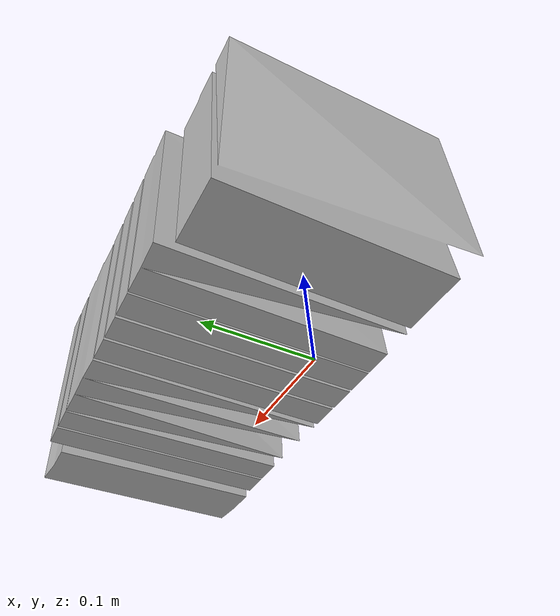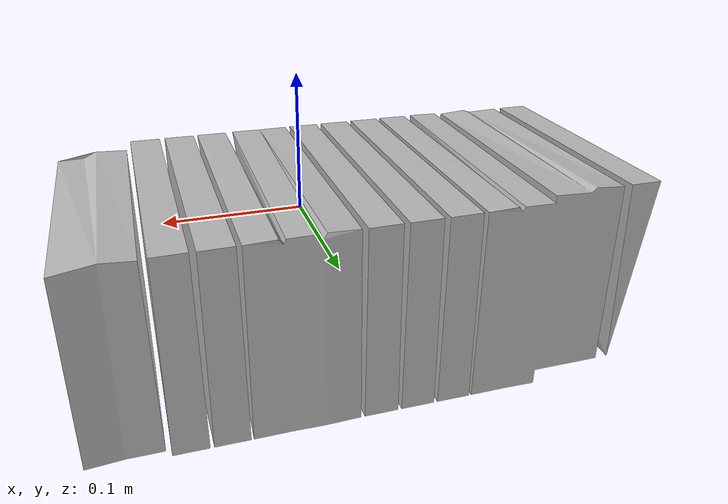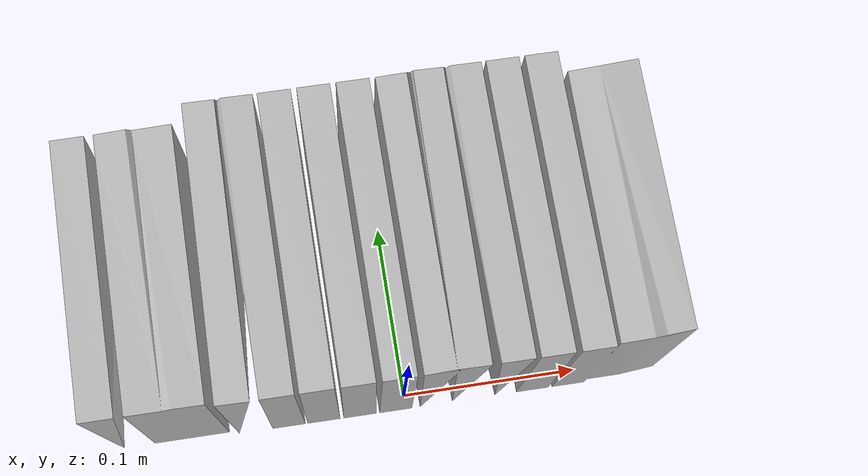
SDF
<?xml version="1.0" ?>
<sdf version="1.4">
  <model name="shelf1_book1_v1">
    <link name="body">
      <pose>0 0 0 0 0 0</pose>
      <inertial>
        <pose>  -0.006085   0.085034   0.001921 0 0 0</pose>
        <mass>0.5</mass>
        <inertia>
          <ixx>0.01</ixx>
          <ixy>0</ixy>
          <ixz>0</ixz>
          <iyy>0.01</iyy>
          <iyz>0</iyz>
          <izz>0.01</izz>
        </inertia>
      </inertial>
      <collision name="collision">
        <pose>  -0.006085   0.085034   0.001921 0 0 0</pose>
        <geometry>
          <box>
            <size>0.293543 0.172462 0.1206</size>
          </box>
        </geometry>
      </collision>
      <visual name="visual">
        <geometry>
          <mesh>
            <uri>model://bookshelf/shelf1_items/book1_v1/book1_v1.dae</uri>
          </mesh>
        </geometry>
      </visual>
    </link>
  </model>
</sdf>
